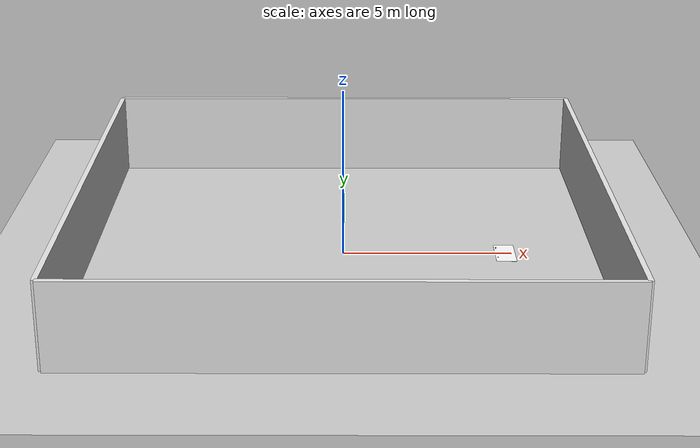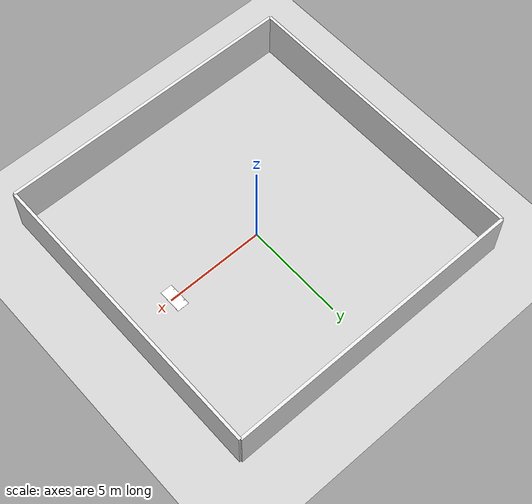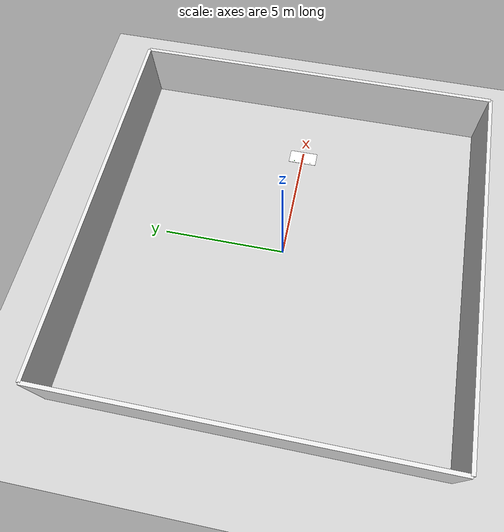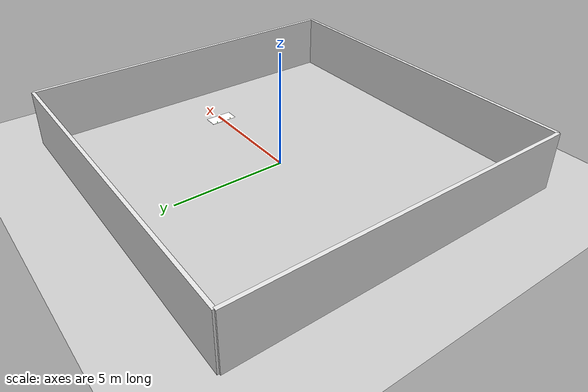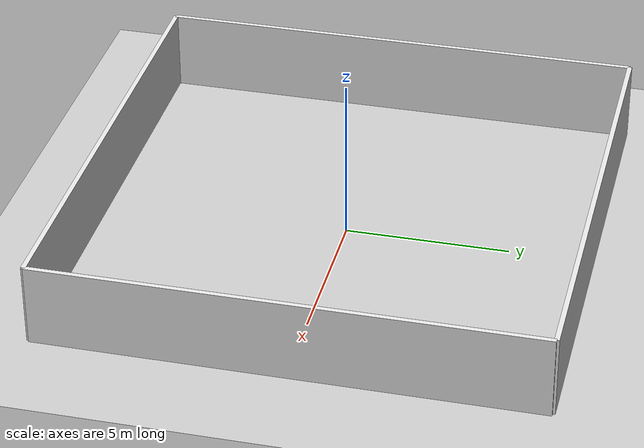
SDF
<sdf version="1.8">
 <world name="default">
  <physics name="2ms" type="ode">
   <max_step_size>0.002</max_step_size>
   <real_time_factor>1.0</real_time_factor>
   <real_time_update_rate>500</real_time_update_rate>
  </physics>
  <plugin filename="gz-sim-physics-system" name="gz::sim::systems::Physics"/>
  <plugin filename="gz-sim-user-commands-system" name="gz::sim::systems::UserCommands"/>
  <plugin filename="gz-sim-scene-broadcaster-system" name="gz::sim::systems::SceneBroadcaster"/>
  <plugin filename="gz-sim-sensors-system" name="gz::sim::systems::Sensors">
   <render_engine>ogre2</render_engine>
  </plugin>
  <plugin filename="gz-sim-contact-system" name="gz::sim::systems::Contact"/>
  <plugin filename="libgz_link_attacher.so" name="gz_link_attacher::LinkAttacher">
   <robot_model_name>myagv_mecharm</robot_model_name>
   <gripper_link_name>gripper_left1</gripper_link_name>
  </plugin>
  <scene>
   <ambient>0.4 0.4 0.4 1</ambient>
   <background>0.7 0.7 0.7 1</background>
   <shadows>false</shadows>
   <grid>false</grid>
  </scene>
  <light type="directional" name="sun">
   <cast_shadows>false</cast_shadows>
   <pose>0 0 10 0 0 0</pose>
   <diffuse>0.8 0.8 0.8 1</diffuse>
   <specular>0.2 0.2 0.2 1</specular>
   <direction>-0.5 0.1 -0.9</direction>
  </light>
  <model name="ground_plane">
   <static>true</static>
   <link name="link">
    <collision name="collision">
     <geometry><plane><normal>0 0 1</normal><size>100 100</size></plane></geometry>
    </collision>
    <visual name="visual">
     <geometry><plane><normal>0 0 1</normal><size>100 100</size></plane></geometry>
     <material>
      <ambient>0.8 0.8 0.8 1</ambient>
      <diffuse>0.8 0.8 0.8 1</diffuse>
      <specular>0.8 0.8 0.8 1</specular>
     </material>
    </visual>
   </link>
  </model>
  <model name="pick_rug">
   <static>true</static>
   <pose>4.8 0 0 0 0 0</pose>
   <link name="link">
    <visual name="visual">
     <pose>0 0 0.0025 0 0 0</pose>
     <geometry><box><size>0.6 1.2 0.005</size></box></geometry>
     <material>
      <diffuse>1 1 1 1</diffuse>
      <pbr>
       <metal><albedo_map>model://mesa_comedor/meshes/wood.jpg</albedo_map><roughness>0.8</roughness></metal>
      </pbr>
     </material>
    </visual>
    <collision name="collision">
     <pose>0 0 0.0025 0 0 0</pose>
     <geometry><box><size>0.6 1.2 0.005</size></box></geometry>
    </collision>
   </link>
  </model>
  <model name="wall_north">
   <static>true</static>
   <pose>0 7.5 1.25 0 0 0</pose>
   <link name="link">
    <collision name="collision"><geometry><box><size>15 0.15 2.5</size></box></geometry></collision>
    <visual name="visual">
     <geometry><box><size>15 0.15 2.5</size></box></geometry>
     <material>
      <ambient>0.9 0.9 0.9 1</ambient>
      <diffuse>0.9 0.9 0.9 1</diffuse>
      <specular>0.1 0.1 0.1 1</specular>
     </material>
    </visual>
   </link>
  </model>
  <model name="wall_south">
   <static>true</static>
   <pose>0 -7.5 1.25 0 0 0</pose>
   <link name="link">
    <collision name="collision"><geometry><box><size>15 0.15 2.5</size></box></geometry></collision>
    <visual name="visual">
     <geometry><box><size>15 0.15 2.5</size></box></geometry>
     <material>
      <ambient>0.9 0.9 0.9 1</ambient>
      <diffuse>0.9 0.9 0.9 1</diffuse>
      <specular>0.1 0.1 0.1 1</specular>
     </material>
    </visual>
   </link>
  </model>
  <model name="wall_east">
   <static>true</static>
   <pose>7.5 0 1.25 0 0 1.57</pose>
   <link name="link">
    <collision name="collision"><geometry><box><size>15 0.15 2.5</size></box></geometry></collision>
    <visual name="visual">
     <geometry><box><size>15 0.15 2.5</size></box></geometry>
     <material>
      <ambient>0.9 0.9 0.9 1</ambient>
      <diffuse>0.9 0.9 0.9 1</diffuse>
      <specular>0.1 0.1 0.1 1</specular>
     </material>
    </visual>
   </link>
  </model>
  <model name="wall_west">
   <static>true</static>
   <pose>-7.5 0 1.25 0 0 1.57</pose>
   <link name="link">
    <collision name="collision"><geometry><box><size>15 0.15 2.5</size></box></geometry></collision>
    <visual name="visual">
     <geometry><box><size>15 0.15 2.5</size></box></geometry>
     <material>
      <ambient>0.9 0.9 0.9 1</ambient>
      <diffuse>0.9 0.9 0.9 1</diffuse>
      <specular>0.1 0.1 0.1 1</specular>
     </material>
    </visual>
   </link>
  </model>
  <model name="blue_box">
   <pose>4.56 0 0.02 0 0 0</pose>
   <link name="link">
    <inertial>
     <mass>0.02</mass>
     <inertia>
      <ixx>2.54e-06</ixx>
      <ixy>0</ixy>
      <ixz>0</ixz>
      <iyy>3.00e-06</iyy>
      <iyz>0</iyz>
      <izz>2.54e-06</izz>
     </inertia>
    </inertial>
    <collision name="collision"><geometry><box><size>0.03 0.025 0.03</size></box></geometry></collision>
    <visual name="visual">
     <geometry><box><size>0.03 0.025 0.03</size></box></geometry>
     <material><ambient>0 0 1 1</ambient><diffuse>0 0 1 1</diffuse><specular>0.5 0.5 0.5 1</specular></material>
    </visual>
   </link>
  </model>
  <model name="yellow_ball">
   <pose>4.56 -0.35 0.02 0 0 0</pose>
   <link name="link">
    <inertial>
     <mass>0.02</mass>
     <inertia>
      <ixx>1.80e-06</ixx>
      <ixy>0</ixy>
      <ixz>0</ixz>
      <iyy>1.80e-06</iyy>
      <iyz>0</iyz>
      <izz>1.80e-06</izz>
     </inertia>
    </inertial>
    <collision name="collision"><geometry><sphere><radius>0.015</radius></sphere></geometry></collision>
    <visual name="visual">
     <geometry><sphere><radius>0.015</radius></sphere></geometry>
     <material><ambient>1 1 0 1</ambient><diffuse>1 1 0 1</diffuse><specular>0.5 0.5 0.5 1</specular></material>
    </visual>
   </link>
  </model>
  <model name="green_cylinder">
   <pose>4.56 0.35 0.025 0 0 0</pose>
   <link name="link">
    <inertial>
     <mass>0.02</mass>
     <inertia>
      <ixx>3.79e-06</ixx>
      <ixy>0</ixy>
      <ixz>0</ixz>
      <iyy>3.79e-06</iyy>
      <iyz>0</iyz>
      <izz>2.25e-06</izz>
     </inertia>
    </inertial>
    <collision name="collision">
     <geometry><cylinder><radius>0.015</radius><length>0.04</length></cylinder></geometry>
    </collision>
    <visual name="visual">
     <geometry><cylinder><radius>0.015</radius><length>0.04</length></cylinder></geometry>
     <material><ambient>0 1 0 1</ambient><diffuse>0 1 0 1</diffuse><specular>0.5 0.5 0.5 1</specular></material>
    </visual>
   </link>
  </model>
 </world>
</sdf>
